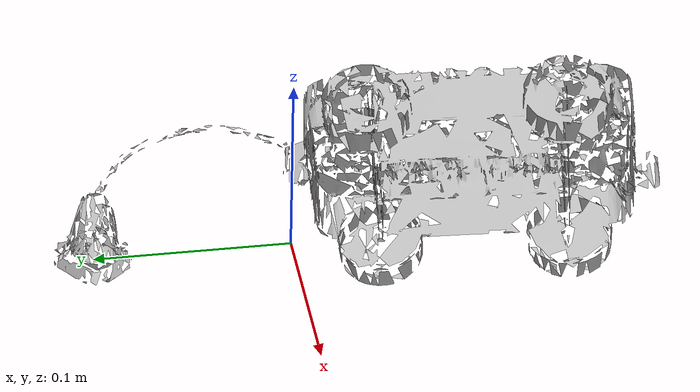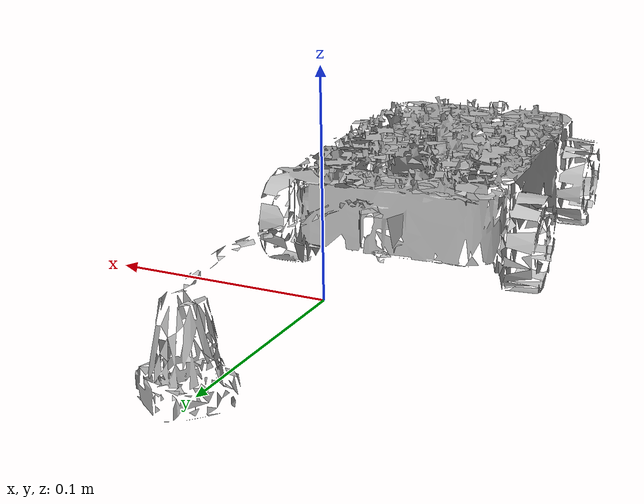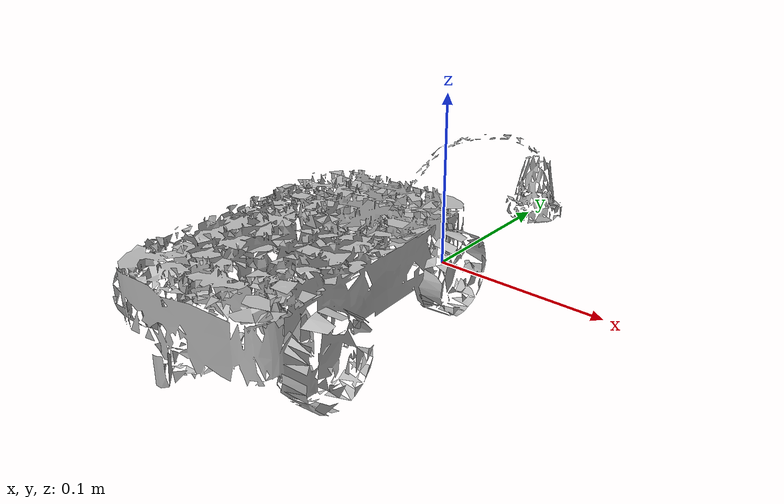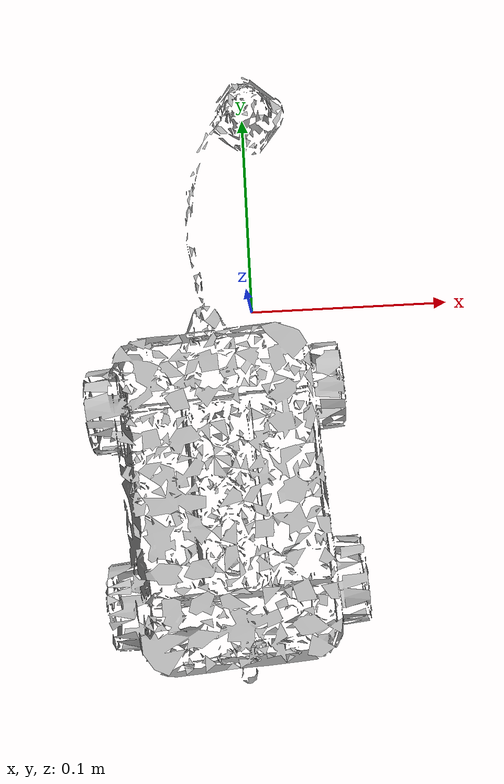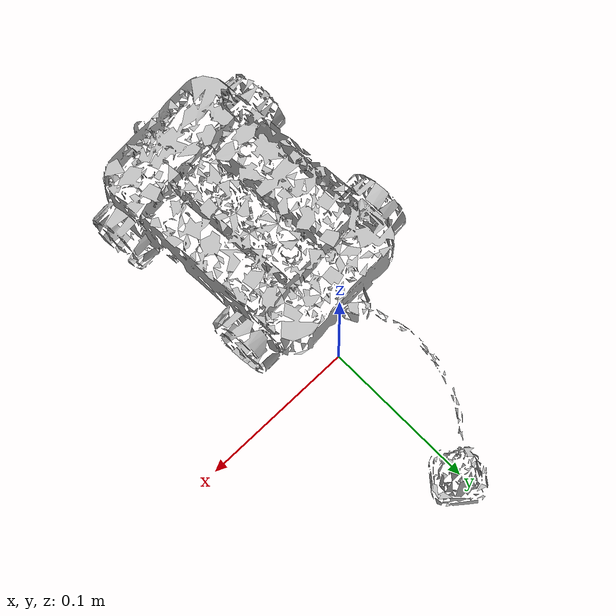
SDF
<?xml version='1.0'?>
<sdf version="1.4">
  <model name="g_lego_duplo">
    <static>false</static>
    <link name="link">
      <inertial>
        <pose>-0.01440079954550051 -0.08344438751622156 0.031183760567335284 -2.9863348819126774 -1.539472904089481 1.372364232159005</pose>
        <mass>0.00024760532090067737</mass>
        <inertia>
          <ixx>1.3615207159566274e-06</ixx>
          <ixy>-5.816891158533652e-24</ixy>
          <ixz>7.554959084259458e-23</ixz>
          <iyy>1.0529228558439234e-06</iyy>
          <iyz>-2.992624705834659e-24</iyz>
          <izz>3.8773471220076056e-07</izz>
        </inertia>
      </inertial>
      <collision name="collision">
        <geometry>
          <mesh>
            <!-- Use a downsampled mesh for collisions -->
            <uri>model://073-g_lego_duplo/downsampled.obj</uri>
	        </mesh>
        </geometry>
        <surface>
      </surface>
      </collision>
      <visual name="visual">
        <geometry>
          <mesh>
            <uri>model://073-g_lego_duplo/google_16k/textured.obj</uri>
	        </mesh>
        </geometry>
        <material>
          <script>
            <uri>model://073-g_lego_duplo/g_lego_duplo.material</uri>
            <name>g_lego_duplo</name>
          </script>
        </material>
      </visual>
    </link>
  </model>
</sdf>
